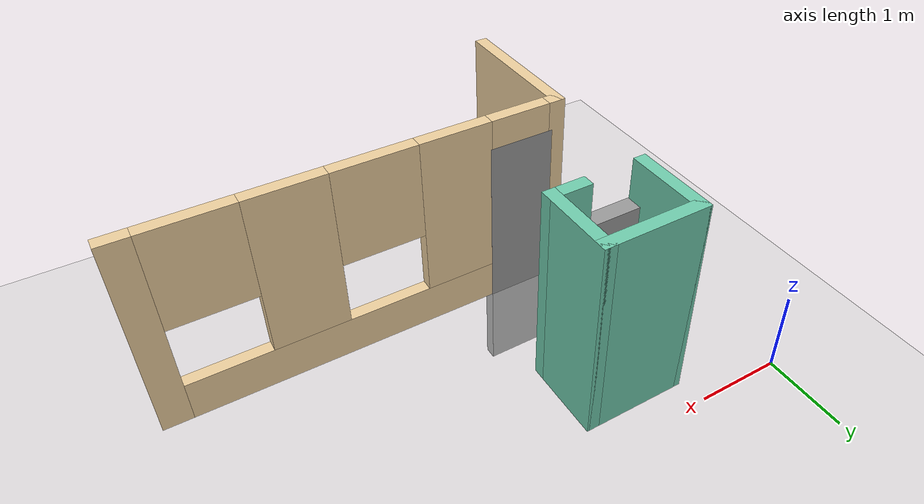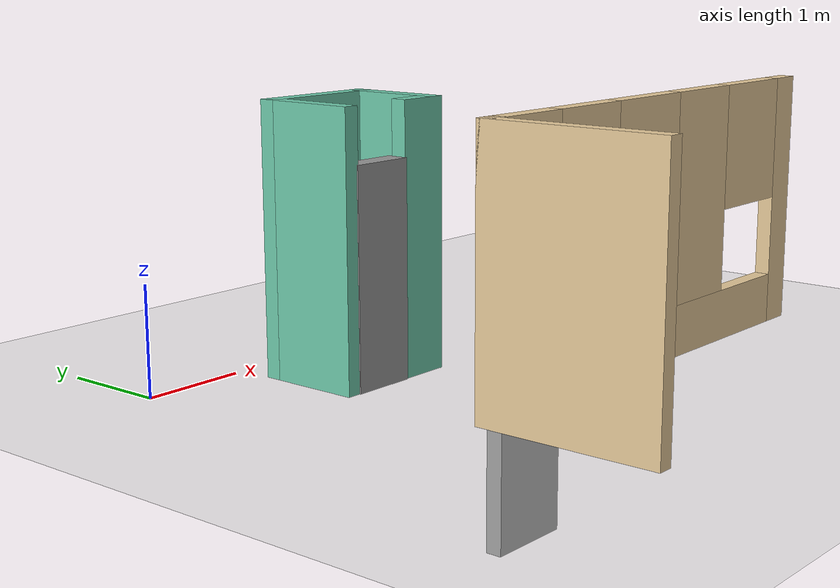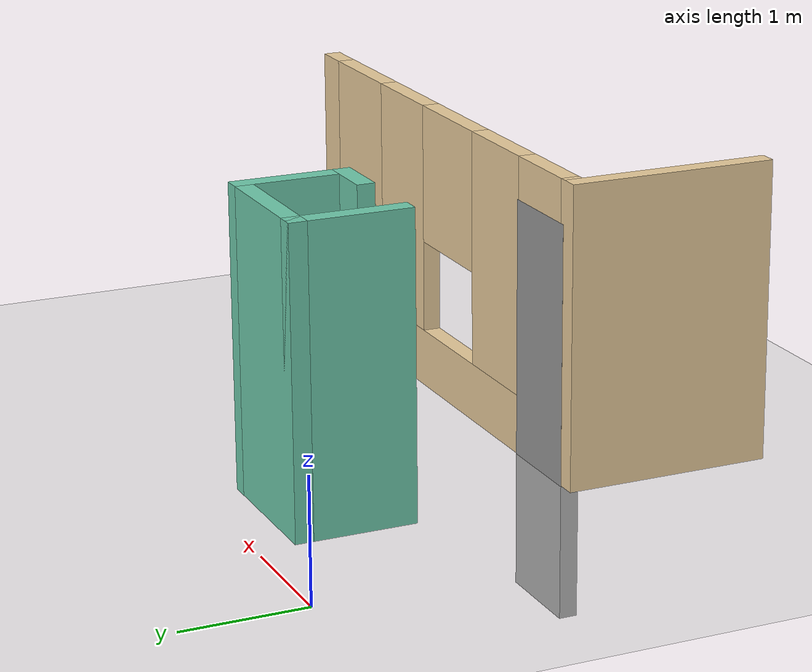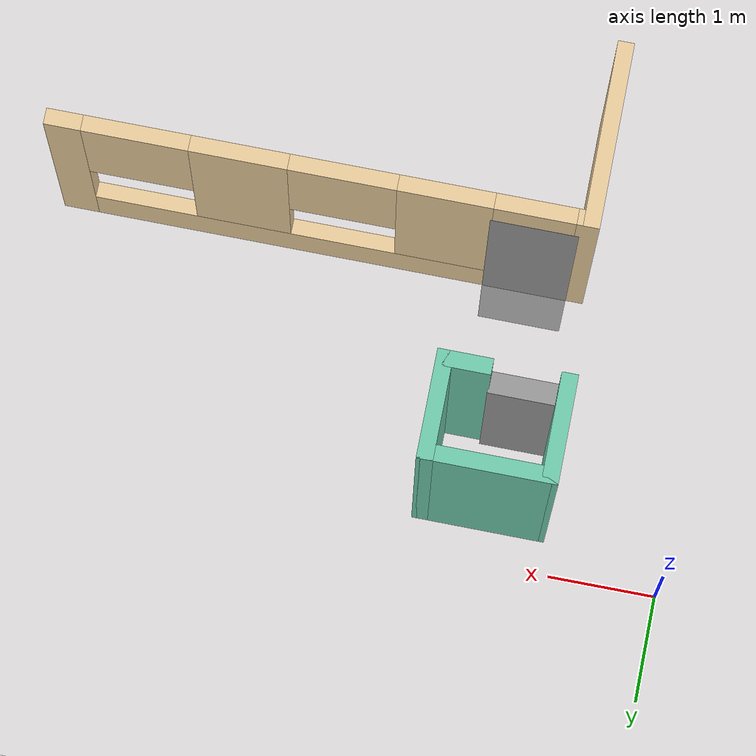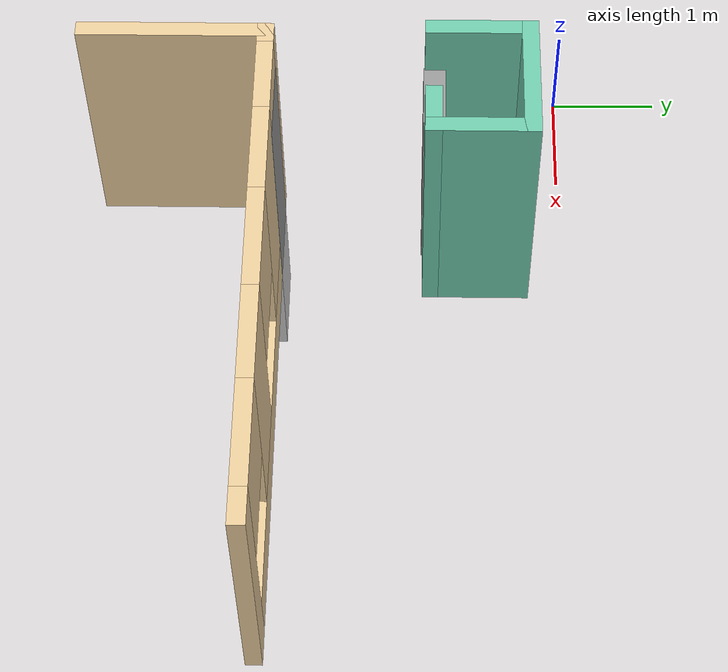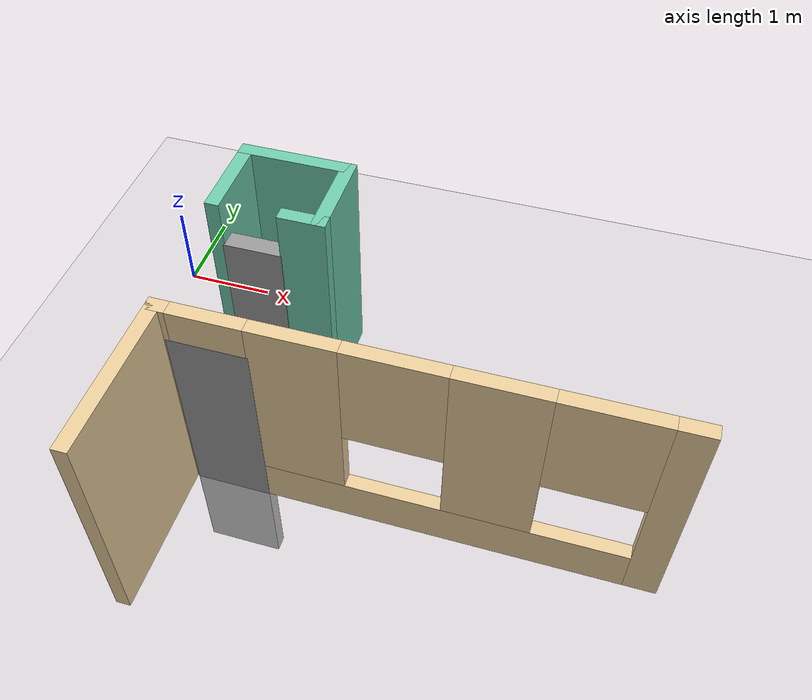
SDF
<sdf version="1.6">
 <world name="default">
  <model name="ground_plane">
   <static>1</static>
   <link name="link">
    <collision name="collision">
     <geometry><plane><normal>0 0 1</normal><size>100 100</size></plane></geometry>
     <surface><friction><ode><mu>100</mu><mu2>50</mu2></ode></friction></surface>
    </collision>
    <visual name="visual">
     <cast_shadows>0</cast_shadows>
     <geometry><plane><normal>0 0 1</normal><size>100 100</size></plane></geometry>
     <material>
      <script><uri>file://media/materials/scripts/gazebo.material</uri><name>Gazebo/Grey</name></script>
     </material>
    </visual>
   </link>
  </model>
  <model name="my_world">
   <link name="Door_2">
    <pose>0.765403 -1.37888 0 0 -0 0</pose>
    <visual name="Door_2_Visual">
     <pose>0 0 1 0 -0 0</pose>
     <geometry><box><size>0.626242 0.2 2</size></box></geometry>
     <material>
      <script><uri>file://media/materials/scripts/gazebo.material</uri><name>Gazebo/Grey</name></script>
      <ambient>0.3 0.3 0.3 1</ambient>
      <diffuse>0.7 0.7 0.7 1</diffuse>
      <specular>0.01 0.01 0.01 1</specular>
      <emissive>0 0 0 1</emissive>
      <shader type="pixel"/>
     </material>
    </visual>
    <collision name="Door_2_Collision">
     <pose>0 0 1 0 -0 0</pose>
     <geometry><box><size>0.626242 0.2 2</size></box></geometry>
     <surface>
      <friction>
       <ode><mu>1</mu><mu2>1</mu2><fdir1>0 0 0</fdir1><slip1>0</slip1><slip2>0</slip2></ode>
       <torsional>
        <coefficient>1</coefficient>
        <patch_radius>0</patch_radius>
        <surface_radius>0</surface_radius>
        <use_patch_radius>1</use_patch_radius>
        <ode><slip>0</slip></ode>
       </torsional>
      </friction>
      <bounce><restitution_coefficient>0</restitution_coefficient><threshold>1e+06</threshold></bounce>
      <contact>
       <collide_without_contact>0</collide_without_contact>
       <collide_without_contact_bitmask>1</collide_without_contact_bitmask>
       <collide_bitmask>1</collide_bitmask>
       <ode>
        <soft_cfm>0</soft_cfm>
        <soft_erp>0.2</soft_erp>
        <kp>1e+13</kp>
        <kd>1</kd>
        <max_vel>0.01</max_vel>
        <min_depth>0</min_depth>
       </ode>
       <bullet>
        <split_impulse>1</split_impulse>
        <split_impulse_penetration_threshold>-0.01</split_impulse_penetration_threshold>
        <soft_cfm>0</soft_cfm>
        <soft_erp>0.2</soft_erp>
        <kp>1e+13</kp>
        <kd>1</kd>
       </bullet>
      </contact>
     </surface>
    </collision>
   </link>
   <link name="Wall_1">
    <pose>2.87502 -2.875 0 0 -0 3.14159</pose>
    <visual name="Wall_1_Visual_0">
     <pose>-2.33279 0 1.25 0 -0 0</pose>
     <geometry><box><size>0.33442 0.15 2.5</size></box></geometry>
     <material>
      <script><uri>file://media/materials/scripts/gazebo.material</uri><name>Gazebo/Grey</name></script>
      <ambient>0.921569 0.807843 0.615686 1</ambient>
      <diffuse>0.7 0.7 0.7 1</diffuse>
      <specular>0.01 0.01 0.01 1</specular>
      <emissive>0 0 0 1</emissive>
      <shader type="pixel"/>
     </material>
     <meta><layer>0</layer></meta>
    </visual>
    <visual name="Wall_1_Visual_1">
     <pose>2.39699 0 1.25 0 -0 0</pose>
     <geometry><box><size>0.206015 0.15 2.5</size></box></geometry>
     <material>
      <script><uri>file://media/materials/scripts/gazebo.material</uri><name>Gazebo/Grey</name></script>
      <ambient>0.921569 0.807843 0.615686 1</ambient>
      <diffuse>0.7 0.7 0.7 1</diffuse>
      <specular>0.01 0.01 0.01 1</specular>
      <emissive>0 0 0 1</emissive>
      <shader type="pixel"/>
     </material>
     <meta><layer>0</layer></meta>
    </visual>
    <visual name="Wall_1_Visual_2">
     <pose>-0.306447 0 0.25 0 -0 0</pose>
     <geometry><box><size>3.71827 0.15 0.5</size></box></geometry>
     <material>
      <script><uri>file://media/materials/scripts/gazebo.material</uri><name>Gazebo/Grey</name></script>
      <ambient>0.921569 0.807843 0.615686 1</ambient>
      <diffuse>0.7 0.7 0.7 1</diffuse>
      <specular>0.01 0.01 0.01 1</specular>
      <emissive>0 0 0 1</emissive>
      <shader type="pixel"/>
     </material>
     <meta><layer>0</layer></meta>
    </visual>
    <visual name="Wall_1_Visual_3">
     <pose>-0.747205 0 1.5 0 -0 0</pose>
     <geometry><box><size>0.892899 0.15 2</size></box></geometry>
     <material>
      <script><uri>file://media/materials/scripts/gazebo.material</uri><name>Gazebo/Grey</name></script>
      <ambient>0.921569 0.807843 0.615686 1</ambient>
      <diffuse>0.7 0.7 0.7 1</diffuse>
      <specular>0.01 0.01 0.01 1</specular>
      <emissive>0 0 0 1</emissive>
      <shader type="pixel"/>
     </material>
     <meta><layer>0</layer></meta>
    </visual>
    <visual name="Wall_1_Visual_4">
     <pose>1.11854 0 1.5 0 -0 0</pose>
     <geometry><box><size>0.868291 0.15 2</size></box></geometry>
     <material>
      <script><uri>file://media/materials/scripts/gazebo.material</uri><name>Gazebo/Grey</name></script>
      <ambient>0.921569 0.807843 0.615686 1</ambient>
      <diffuse>0.7 0.7 0.7 1</diffuse>
      <specular>0.01 0.01 0.01 1</specular>
      <emissive>0 0 0 1</emissive>
      <shader type="pixel"/>
     </material>
     <meta><layer>0</layer></meta>
    </visual>
    <visual name="Wall_1_Visual_5">
     <pose>-1.67962 0 1.9 0 -0 0</pose>
     <geometry><box><size>0.971925 0.15 1.2</size></box></geometry>
     <material>
      <script><uri>file://media/materials/scripts/gazebo.material</uri><name>Gazebo/Grey</name></script>
      <ambient>0.921569 0.807843 0.615686 1</ambient>
      <diffuse>0.7 0.7 0.7 1</diffuse>
      <specular>0.01 0.01 0.01 1</specular>
      <emissive>0 0 0 1</emissive>
      <shader type="pixel"/>
     </material>
     <meta><layer>0</layer></meta>
    </visual>
    <visual name="Wall_1_Visual_6">
     <pose>0.191819 0 1.9 0 -0 0</pose>
     <geometry><box><size>0.98515 0.15 1.2</size></box></geometry>
     <material>
      <script><uri>file://media/materials/scripts/gazebo.material</uri><name>Gazebo/Grey</name></script>
      <ambient>0.921569 0.807843 0.615686 1</ambient>
      <diffuse>0.7 0.7 0.7 1</diffuse>
      <specular>0.01 0.01 0.01 1</specular>
      <emissive>0 0 0 1</emissive>
      <shader type="pixel"/>
     </material>
     <meta><layer>0</layer></meta>
    </visual>
    <visual name="Wall_1_Visual_7">
     <pose>1.92334 0 2.25 0 -0 0</pose>
     <geometry><box><size>0.7413 0.15 0.5</size></box></geometry>
     <material>
      <script><uri>file://media/materials/scripts/gazebo.material</uri><name>Gazebo/Grey</name></script>
      <ambient>0.921569 0.807843 0.615686 1</ambient>
      <diffuse>0.7 0.7 0.7 1</diffuse>
      <specular>0.01 0.01 0.01 1</specular>
      <emissive>0 0 0 1</emissive>
      <shader type="pixel"/>
     </material>
     <meta><layer>0</layer></meta>
    </visual>
    <collision name="Wall_1_Collision_0">
     <pose>-2.33279 0 1.25 0 -0 0</pose>
     <geometry><box><size>0.33442 0.15 2.5</size></box></geometry>
     <surface>
      <friction>
       <ode><mu>1</mu><mu2>1</mu2><fdir1>0 0 0</fdir1><slip1>0</slip1><slip2>0</slip2></ode>
       <torsional>
        <coefficient>1</coefficient>
        <patch_radius>0</patch_radius>
        <surface_radius>0</surface_radius>
        <use_patch_radius>1</use_patch_radius>
        <ode><slip>0</slip></ode>
       </torsional>
      </friction>
      <bounce><restitution_coefficient>0</restitution_coefficient><threshold>1e+06</threshold></bounce>
      <contact>
       <collide_without_contact>0</collide_without_contact>
       <collide_without_contact_bitmask>1</collide_without_contact_bitmask>
       <collide_bitmask>1</collide_bitmask>
       <ode>
        <soft_cfm>0</soft_cfm>
        <soft_erp>0.2</soft_erp>
        <kp>1e+13</kp>
        <kd>1</kd>
        <max_vel>0.01</max_vel>
        <min_depth>0</min_depth>
       </ode>
       <bullet>
        <split_impulse>1</split_impulse>
        <split_impulse_penetration_threshold>-0.01</split_impulse_penetration_threshold>
        <soft_cfm>0</soft_cfm>
        <soft_erp>0.2</soft_erp>
        <kp>1e+13</kp>
        <kd>1</kd>
       </bullet>
      </contact>
     </surface>
    </collision>
    <collision name="Wall_1_Collision_1">
     <pose>2.39699 0 1.25 0 -0 0</pose>
     <geometry><box><size>0.206015 0.15 2.5</size></box></geometry>
     <surface>
      <friction>
       <ode><mu>1</mu><mu2>1</mu2><fdir1>0 0 0</fdir1><slip1>0</slip1><slip2>0</slip2></ode>
       <torsional>
        <coefficient>1</coefficient>
        <patch_radius>0</patch_radius>
        <surface_radius>0</surface_radius>
        <use_patch_radius>1</use_patch_radius>
        <ode><slip>0</slip></ode>
       </torsional>
      </friction>
      <bounce><restitution_coefficient>0</restitution_coefficient><threshold>1e+06</threshold></bounce>
      <contact>
       <collide_without_contact>0</collide_without_contact>
       <collide_without_contact_bitmask>1</collide_without_contact_bitmask>
       <collide_bitmask>1</collide_bitmask>
       <ode>
        <soft_cfm>0</soft_cfm>
        <soft_erp>0.2</soft_erp>
        <kp>1e+13</kp>
        <kd>1</kd>
        <max_vel>0.01</max_vel>
        <min_depth>0</min_depth>
       </ode>
       <bullet>
        <split_impulse>1</split_impulse>
        <split_impulse_penetration_threshold>-0.01</split_impulse_penetration_threshold>
        <soft_cfm>0</soft_cfm>
        <soft_erp>0.2</soft_erp>
        <kp>1e+13</kp>
        <kd>1</kd>
       </bullet>
      </contact>
     </surface>
    </collision>
    <collision name="Wall_1_Collision_2">
     <pose>-0.306447 0 0.25 0 -0 0</pose>
     <geometry><box><size>3.71827 0.15 0.5</size></box></geometry>
     <surface>
      <friction>
       <ode><mu>1</mu><mu2>1</mu2><fdir1>0 0 0</fdir1><slip1>0</slip1><slip2>0</slip2></ode>
       <torsional>
        <coefficient>1</coefficient>
        <patch_radius>0</patch_radius>
        <surface_radius>0</surface_radius>
        <use_patch_radius>1</use_patch_radius>
        <ode><slip>0</slip></ode>
       </torsional>
      </friction>
      <bounce><restitution_coefficient>0</restitution_coefficient><threshold>1e+06</threshold></bounce>
      <contact>
       <collide_without_contact>0</collide_without_contact>
       <collide_without_contact_bitmask>1</collide_without_contact_bitmask>
       <collide_bitmask>1</collide_bitmask>
       <ode>
        <soft_cfm>0</soft_cfm>
        <soft_erp>0.2</soft_erp>
        <kp>1e+13</kp>
        <kd>1</kd>
        <max_vel>0.01</max_vel>
        <min_depth>0</min_depth>
       </ode>
       <bullet>
        <split_impulse>1</split_impulse>
        <split_impulse_penetration_threshold>-0.01</split_impulse_penetration_threshold>
        <soft_cfm>0</soft_cfm>
        <soft_erp>0.2</soft_erp>
        <kp>1e+13</kp>
        <kd>1</kd>
       </bullet>
      </contact>
     </surface>
    </collision>
    <collision name="Wall_1_Collision_3">
     <pose>-0.747205 0 1.5 0 -0 0</pose>
     <geometry><box><size>0.892899 0.15 2</size></box></geometry>
     <surface>
      <friction>
       <ode><mu>1</mu><mu2>1</mu2><fdir1>0 0 0</fdir1><slip1>0</slip1><slip2>0</slip2></ode>
       <torsional>
        <coefficient>1</coefficient>
        <patch_radius>0</patch_radius>
        <surface_radius>0</surface_radius>
        <use_patch_radius>1</use_patch_radius>
        <ode><slip>0</slip></ode>
       </torsional>
      </friction>
      <bounce><restitution_coefficient>0</restitution_coefficient><threshold>1e+06</threshold></bounce>
      <contact>
       <collide_without_contact>0</collide_without_contact>
       <collide_without_contact_bitmask>1</collide_without_contact_bitmask>
       <collide_bitmask>1</collide_bitmask>
       <ode>
        <soft_cfm>0</soft_cfm>
        <soft_erp>0.2</soft_erp>
        <kp>1e+13</kp>
        <kd>1</kd>
        <max_vel>0.01</max_vel>
        <min_depth>0</min_depth>
       </ode>
       <bullet>
        <split_impulse>1</split_impulse>
        <split_impulse_penetration_threshold>-0.01</split_impulse_penetration_threshold>
        <soft_cfm>0</soft_cfm>
        <soft_erp>0.2</soft_erp>
        <kp>1e+13</kp>
        <kd>1</kd>
       </bullet>
      </contact>
     </surface>
    </collision>
    <collision name="Wall_1_Collision_4">
     <pose>1.11854 0 1.5 0 -0 0</pose>
     <geometry><box><size>0.868291 0.15 2</size></box></geometry>
     <surface>
      <friction>
       <ode><mu>1</mu><mu2>1</mu2><fdir1>0 0 0</fdir1><slip1>0</slip1><slip2>0</slip2></ode>
       <torsional>
        <coefficient>1</coefficient>
        <patch_radius>0</patch_radius>
        <surface_radius>0</surface_radius>
        <use_patch_radius>1</use_patch_radius>
        <ode><slip>0</slip></ode>
       </torsional>
      </friction>
      <bounce><restitution_coefficient>0</restitution_coefficient><threshold>1e+06</threshold></bounce>
      <contact>
       <collide_without_contact>0</collide_without_contact>
       <collide_without_contact_bitmask>1</collide_without_contact_bitmask>
       <collide_bitmask>1</collide_bitmask>
       <ode>
        <soft_cfm>0</soft_cfm>
        <soft_erp>0.2</soft_erp>
        <kp>1e+13</kp>
        <kd>1</kd>
        <max_vel>0.01</max_vel>
        <min_depth>0</min_depth>
       </ode>
       <bullet>
        <split_impulse>1</split_impulse>
        <split_impulse_penetration_threshold>-0.01</split_impulse_penetration_threshold>
        <soft_cfm>0</soft_cfm>
        <soft_erp>0.2</soft_erp>
        <kp>1e+13</kp>
        <kd>1</kd>
       </bullet>
      </contact>
     </surface>
    </collision>
    <collision name="Wall_1_Collision_5">
     <pose>-1.67962 0 1.9 0 -0 0</pose>
     <geometry><box><size>0.971925 0.15 1.2</size></box></geometry>
     <surface>
      <friction>
       <ode><mu>1</mu><mu2>1</mu2><fdir1>0 0 0</fdir1><slip1>0</slip1><slip2>0</slip2></ode>
       <torsional>
        <coefficient>1</coefficient>
        <patch_radius>0</patch_radius>
        <surface_radius>0</surface_radius>
        <use_patch_radius>1</use_patch_radius>
        <ode><slip>0</slip></ode>
       </torsional>
      </friction>
      <bounce><restitution_coefficient>0</restitution_coefficient><threshold>1e+06</threshold></bounce>
      <contact>
       <collide_without_contact>0</collide_without_contact>
       <collide_without_contact_bitmask>1</collide_without_contact_bitmask>
       <collide_bitmask>1</collide_bitmask>
       <ode>
        <soft_cfm>0</soft_cfm>
        <soft_erp>0.2</soft_erp>
        <kp>1e+13</kp>
        <kd>1</kd>
        <max_vel>0.01</max_vel>
        <min_depth>0</min_depth>
       </ode>
       <bullet>
        <split_impulse>1</split_impulse>
        <split_impulse_penetration_threshold>-0.01</split_impulse_penetration_threshold>
        <soft_cfm>0</soft_cfm>
        <soft_erp>0.2</soft_erp>
        <kp>1e+13</kp>
        <kd>1</kd>
       </bullet>
      </contact>
     </surface>
    </collision>
    <collision name="Wall_1_Collision_6">
     <pose>0.191819 0 1.9 0 -0 0</pose>
     <geometry><box><size>0.98515 0.15 1.2</size></box></geometry>
     <surface>
      <friction>
       <ode><mu>1</mu><mu2>1</mu2><fdir1>0 0 0</fdir1><slip1>0</slip1><slip2>0</slip2></ode>
       <torsional>
        <coefficient>1</coefficient>
        <patch_radius>0</patch_radius>
        <surface_radius>0</surface_radius>
        <use_patch_radius>1</use_patch_radius>
        <ode><slip>0</slip></ode>
       </torsional>
      </friction>
      <bounce><restitution_coefficient>0</restitution_coefficient><threshold>1e+06</threshold></bounce>
      <contact>
       <collide_without_contact>0</collide_without_contact>
       <collide_without_contact_bitmask>1</collide_without_contact_bitmask>
       <collide_bitmask>1</collide_bitmask>
       <ode>
        <soft_cfm>0</soft_cfm>
        <soft_erp>0.2</soft_erp>
        <kp>1e+13</kp>
        <kd>1</kd>
        <max_vel>0.01</max_vel>
        <min_depth>0</min_depth>
       </ode>
       <bullet>
        <split_impulse>1</split_impulse>
        <split_impulse_penetration_threshold>-0.01</split_impulse_penetration_threshold>
        <soft_cfm>0</soft_cfm>
        <soft_erp>0.2</soft_erp>
        <kp>1e+13</kp>
        <kd>1</kd>
       </bullet>
      </contact>
     </surface>
    </collision>
    <collision name="Wall_1_Collision_7">
     <pose>1.92334 0 2.25 0 -0 0</pose>
     <geometry><box><size>0.7413 0.15 0.5</size></box></geometry>
     <surface>
      <friction>
       <ode><mu>1</mu><mu2>1</mu2><fdir1>0 0 0</fdir1><slip1>0</slip1><slip2>0</slip2></ode>
       <torsional>
        <coefficient>1</coefficient>
        <patch_radius>0</patch_radius>
        <surface_radius>0</surface_radius>
        <use_patch_radius>1</use_patch_radius>
        <ode><slip>0</slip></ode>
       </torsional>
      </friction>
      <bounce><restitution_coefficient>0</restitution_coefficient><threshold>1e+06</threshold></bounce>
      <contact>
       <collide_without_contact>0</collide_without_contact>
       <collide_without_contact_bitmask>1</collide_without_contact_bitmask>
       <collide_bitmask>1</collide_bitmask>
       <ode>
        <soft_cfm>0</soft_cfm>
        <soft_erp>0.2</soft_erp>
        <kp>1e+13</kp>
        <kd>1</kd>
        <max_vel>0.01</max_vel>
        <min_depth>0</min_depth>
       </ode>
       <bullet>
        <split_impulse>1</split_impulse>
        <split_impulse_penetration_threshold>-0.01</split_impulse_penetration_threshold>
        <soft_cfm>0</soft_cfm>
        <soft_erp>0.2</soft_erp>
        <kp>1e+13</kp>
        <kd>1</kd>
       </bullet>
      </contact>
     </surface>
    </collision>
   </link>
   <link name="Wall_2">
    <pose>0.450019 -3.675 0 0 0 -1.5708</pose>
    <visual name="Wall_2_Visual">
     <pose>0 0 1.25 0 -0 0</pose>
     <geometry><box><size>1.75 0.15 2.5</size></box></geometry>
     <material>
      <script><uri>file://media/materials/scripts/gazebo.material</uri><name>Gazebo/Grey</name></script>
      <ambient>0.921569 0.807843 0.615686 1</ambient>
      <diffuse>0.7 0.7 0.7 1</diffuse>
      <specular>0.01 0.01 0.01 1</specular>
      <emissive>0 0 0 1</emissive>
      <shader type="pixel"/>
     </material>
     <meta><layer>0</layer></meta>
    </visual>
    <collision name="Wall_2_Collision">
     <pose>0 0 1.25 0 -0 0</pose>
     <geometry><box><size>1.75 0.15 2.5</size></box></geometry>
     <surface>
      <friction>
       <ode><mu>1</mu><mu2>1</mu2><fdir1>0 0 0</fdir1><slip1>0</slip1><slip2>0</slip2></ode>
       <torsional>
        <coefficient>1</coefficient>
        <patch_radius>0</patch_radius>
        <surface_radius>0</surface_radius>
        <use_patch_radius>1</use_patch_radius>
        <ode><slip>0</slip></ode>
       </torsional>
      </friction>
      <bounce><restitution_coefficient>0</restitution_coefficient><threshold>1e+06</threshold></bounce>
      <contact>
       <collide_without_contact>0</collide_without_contact>
       <collide_without_contact_bitmask>1</collide_without_contact_bitmask>
       <collide_bitmask>1</collide_bitmask>
       <ode>
        <soft_cfm>0</soft_cfm>
        <soft_erp>0.2</soft_erp>
        <kp>1e+13</kp>
        <kd>1</kd>
        <max_vel>0.01</max_vel>
        <min_depth>0</min_depth>
       </ode>
       <bullet>
        <split_impulse>1</split_impulse>
        <split_impulse_penetration_threshold>-0.01</split_impulse_penetration_threshold>
        <soft_cfm>0</soft_cfm>
        <soft_erp>0.2</soft_erp>
        <kp>1e+13</kp>
        <kd>1</kd>
       </bullet>
      </contact>
     </surface>
    </collision>
   </link>
   <link name="Wall_30">
    <pose>0.942789 -0.542596 0 0 -0 0</pose>
    <visual name="Wall_30_Visual">
     <pose>0 0 1.25 0 -0 0</pose>
     <geometry><box><size>1.25 0.15 2.5</size></box></geometry>
     <material>
      <script><uri>file://media/materials/scripts/gazebo.material</uri><name>Gazebo/Grey</name></script>
      <ambient>0.435294 0.796078 0.67451 1</ambient>
      <diffuse>0.7 0.7 0.7 1</diffuse>
      <specular>0.01 0.01 0.01 1</specular>
      <emissive>0 0 0 1</emissive>
      <shader type="pixel"/>
     </material>
     <meta><layer>0</layer></meta>
    </visual>
    <collision name="Wall_30_Collision">
     <pose>0 0 1.25 0 -0 0</pose>
     <geometry><box><size>1.25 0.15 2.5</size></box></geometry>
     <surface>
      <friction>
       <ode><mu>1</mu><mu2>1</mu2><fdir1>0 0 0</fdir1><slip1>0</slip1><slip2>0</slip2></ode>
       <torsional>
        <coefficient>1</coefficient>
        <patch_radius>0</patch_radius>
        <surface_radius>0</surface_radius>
        <use_patch_radius>1</use_patch_radius>
        <ode><slip>0</slip></ode>
       </torsional>
      </friction>
      <bounce><restitution_coefficient>0</restitution_coefficient><threshold>1e+06</threshold></bounce>
      <contact>
       <collide_without_contact>0</collide_without_contact>
       <collide_without_contact_bitmask>1</collide_without_contact_bitmask>
       <collide_bitmask>1</collide_bitmask>
       <ode>
        <soft_cfm>0</soft_cfm>
        <soft_erp>0.2</soft_erp>
        <kp>1e+13</kp>
        <kd>1</kd>
        <max_vel>0.01</max_vel>
        <min_depth>0</min_depth>
       </ode>
       <bullet>
        <split_impulse>1</split_impulse>
        <split_impulse_penetration_threshold>-0.01</split_impulse_penetration_threshold>
        <soft_cfm>0</soft_cfm>
        <soft_erp>0.2</soft_erp>
        <kp>1e+13</kp>
        <kd>1</kd>
       </bullet>
      </contact>
     </surface>
    </collision>
   </link>
   <link name="Wall_35">
    <pose>1.49279 -0.967596 0 0 0 -1.5708</pose>
    <visual name="Wall_35_Visual">
     <pose>0 0 1.25 0 -0 0</pose>
     <geometry><box><size>1 0.15 2.5</size></box></geometry>
     <material>
      <script><uri>file://media/materials/scripts/gazebo.material</uri><name>Gazebo/Grey</name></script>
      <ambient>0.435294 0.796078 0.67451 1</ambient>
      <diffuse>0.7 0.7 0.7 1</diffuse>
      <specular>0.01 0.01 0.01 1</specular>
      <emissive>0 0 0 1</emissive>
      <shader type="pixel"/>
     </material>
     <meta><layer>0</layer></meta>
    </visual>
    <collision name="Wall_35_Collision">
     <pose>0 0 1.25 0 -0 0</pose>
     <geometry><box><size>1 0.15 2.5</size></box></geometry>
     <surface>
      <friction>
       <ode><mu>1</mu><mu2>1</mu2><fdir1>0 0 0</fdir1><slip1>0</slip1><slip2>0</slip2></ode>
       <torsional>
        <coefficient>1</coefficient>
        <patch_radius>0</patch_radius>
        <surface_radius>0</surface_radius>
        <use_patch_radius>1</use_patch_radius>
        <ode><slip>0</slip></ode>
       </torsional>
      </friction>
      <bounce><restitution_coefficient>0</restitution_coefficient><threshold>1e+06</threshold></bounce>
      <contact>
       <collide_without_contact>0</collide_without_contact>
       <collide_without_contact_bitmask>1</collide_without_contact_bitmask>
       <collide_bitmask>1</collide_bitmask>
       <ode>
        <soft_cfm>0</soft_cfm>
        <soft_erp>0.2</soft_erp>
        <kp>1e+13</kp>
        <kd>1</kd>
        <max_vel>0.01</max_vel>
        <min_depth>0</min_depth>
       </ode>
       <bullet>
        <split_impulse>1</split_impulse>
        <split_impulse_penetration_threshold>-0.01</split_impulse_penetration_threshold>
        <soft_cfm>0</soft_cfm>
        <soft_erp>0.2</soft_erp>
        <kp>1e+13</kp>
        <kd>1</kd>
       </bullet>
      </contact>
     </surface>
    </collision>
   </link>
   <link name="Wall_36">
    <pose>1.31779 -1.3926 0 0 -0 3.14159</pose>
    <visual name="Wall_36_Visual">
     <pose>0 0 1.25 0 -0 0</pose>
     <geometry><box><size>0.5 0.15 2.5</size></box></geometry>
     <material>
      <script><uri>file://media/materials/scripts/gazebo.material</uri><name>Gazebo/Grey</name></script>
      <ambient>0.435294 0.796078 0.67451 1</ambient>
      <diffuse>0.7 0.7 0.7 1</diffuse>
      <specular>0.01 0.01 0.01 1</specular>
      <emissive>0 0 0 1</emissive>
      <shader type="pixel"/>
     </material>
     <meta><layer>0</layer></meta>
    </visual>
    <collision name="Wall_36_Collision">
     <pose>0 0 1.25 0 -0 0</pose>
     <geometry><box><size>0.5 0.15 2.5</size></box></geometry>
     <surface>
      <friction>
       <ode><mu>1</mu><mu2>1</mu2><fdir1>0 0 0</fdir1><slip1>0</slip1><slip2>0</slip2></ode>
       <torsional>
        <coefficient>1</coefficient>
        <patch_radius>0</patch_radius>
        <surface_radius>0</surface_radius>
        <use_patch_radius>1</use_patch_radius>
        <ode><slip>0</slip></ode>
       </torsional>
      </friction>
      <bounce><restitution_coefficient>0</restitution_coefficient><threshold>1e+06</threshold></bounce>
      <contact>
       <collide_without_contact>0</collide_without_contact>
       <collide_without_contact_bitmask>1</collide_without_contact_bitmask>
       <collide_bitmask>1</collide_bitmask>
       <ode>
        <soft_cfm>0</soft_cfm>
        <soft_erp>0.2</soft_erp>
        <kp>1e+13</kp>
        <kd>1</kd>
        <max_vel>0.01</max_vel>
        <min_depth>0</min_depth>
       </ode>
       <bullet>
        <split_impulse>1</split_impulse>
        <split_impulse_penetration_threshold>-0.01</split_impulse_penetration_threshold>
        <soft_cfm>0</soft_cfm>
        <soft_erp>0.2</soft_erp>
        <kp>1e+13</kp>
        <kd>1</kd>
       </bullet>
      </contact>
     </surface>
    </collision>
   </link>
   <link name="Wall_38">
    <pose>0.392789 -0.967596 0 0 0 -1.5708</pose>
    <visual name="Wall_38_Visual">
     <pose>0 0 1.25 0 -0 0</pose>
     <geometry><box><size>1 0.15 2.5</size></box></geometry>
     <material>
      <script><uri>file://media/materials/scripts/gazebo.material</uri><name>Gazebo/Grey</name></script>
      <ambient>0.435294 0.796078 0.67451 1</ambient>
      <diffuse>0.7 0.7 0.7 1</diffuse>
      <specular>0.01 0.01 0.01 1</specular>
      <emissive>0 0 0 1</emissive>
      <shader type="pixel"/>
     </material>
     <meta><layer>0</layer></meta>
    </visual>
    <collision name="Wall_38_Collision">
     <pose>0 0 1.25 0 -0 0</pose>
     <geometry><box><size>1 0.15 2.5</size></box></geometry>
     <surface>
      <friction>
       <ode><mu>1</mu><mu2>1</mu2><fdir1>0 0 0</fdir1><slip1>0</slip1><slip2>0</slip2></ode>
       <torsional>
        <coefficient>1</coefficient>
        <patch_radius>0</patch_radius>
        <surface_radius>0</surface_radius>
        <use_patch_radius>1</use_patch_radius>
        <ode><slip>0</slip></ode>
       </torsional>
      </friction>
      <bounce><restitution_coefficient>0</restitution_coefficient><threshold>1e+06</threshold></bounce>
      <contact>
       <collide_without_contact>0</collide_without_contact>
       <collide_without_contact_bitmask>1</collide_without_contact_bitmask>
       <collide_bitmask>1</collide_bitmask>
       <ode>
        <soft_cfm>0</soft_cfm>
        <soft_erp>0.2</soft_erp>
        <kp>1e+13</kp>
        <kd>1</kd>
        <max_vel>0.01</max_vel>
        <min_depth>0</min_depth>
       </ode>
       <bullet>
        <split_impulse>1</split_impulse>
        <split_impulse_penetration_threshold>-0.01</split_impulse_penetration_threshold>
        <soft_cfm>0</soft_cfm>
        <soft_erp>0.2</soft_erp>
        <kp>1e+13</kp>
        <kd>1</kd>
       </bullet>
      </contact>
     </surface>
    </collision>
   </link>
   <link name="link_2">
    <pose>0.939223 -2.87583 0.5 0 -0 0</pose>
    <inertial>
     <mass>0.401594</mass>
     <inertia>
      <ixx>0.362136</ixx>
      <ixy>0</ixy>
      <ixz>0</ixz>
      <iyy>0.382907</iyy>
      <iyz>0</iyz>
      <izz>0.0223235</izz>
     </inertia>
    </inertial>
    <visual name="visual">
     <geometry><box><size>0.802398 0.152332 3.28599</size></box></geometry>
     <material>
      <lighting>1</lighting>
      <script><uri>file://media/materials/scripts/gazebo.material</uri><name>Gazebo/Grey</name></script>
      <shader type="pixel"/>
      <ambient>0.3 0.3 0.3 1</ambient>
      <diffuse>0.7 0.7 0.7 1</diffuse>
      <specular>0.01 0.01 0.01 1</specular>
      <emissive>0 0 0 1</emissive>
     </material>
    </visual>
    <collision name="collision">
     <geometry><box><size>0.802398 0.152332 3.28599</size></box></geometry>
     <surface>
      <friction>
       <ode><mu>1</mu><mu2>1</mu2><fdir1>0 0 0</fdir1><slip1>0</slip1><slip2>0</slip2></ode>
       <torsional>
        <coefficient>1</coefficient>
        <patch_radius>0</patch_radius>
        <surface_radius>0</surface_radius>
        <use_patch_radius>1</use_patch_radius>
        <ode><slip>0</slip></ode>
       </torsional>
      </friction>
      <bounce><restitution_coefficient>0</restitution_coefficient><threshold>1e+06</threshold></bounce>
      <contact>
       <collide_without_contact>0</collide_without_contact>
       <collide_without_contact_bitmask>1</collide_without_contact_bitmask>
       <collide_bitmask>1</collide_bitmask>
       <ode>
        <soft_cfm>0</soft_cfm>
        <soft_erp>0.2</soft_erp>
        <kp>1e+13</kp>
        <kd>1</kd>
        <max_vel>0.01</max_vel>
        <min_depth>0</min_depth>
       </ode>
       <bullet>
        <split_impulse>1</split_impulse>
        <split_impulse_penetration_threshold>-0.01</split_impulse_penetration_threshold>
        <soft_cfm>0</soft_cfm>
        <soft_erp>0.2</soft_erp>
        <kp>1e+13</kp>
        <kd>1</kd>
       </bullet>
      </contact>
     </surface>
    </collision>
   </link>
   <static>1</static>
   <pose>0.782828 0.15688 0 0 -0 0</pose>
  </model>
 </world>
</sdf>
